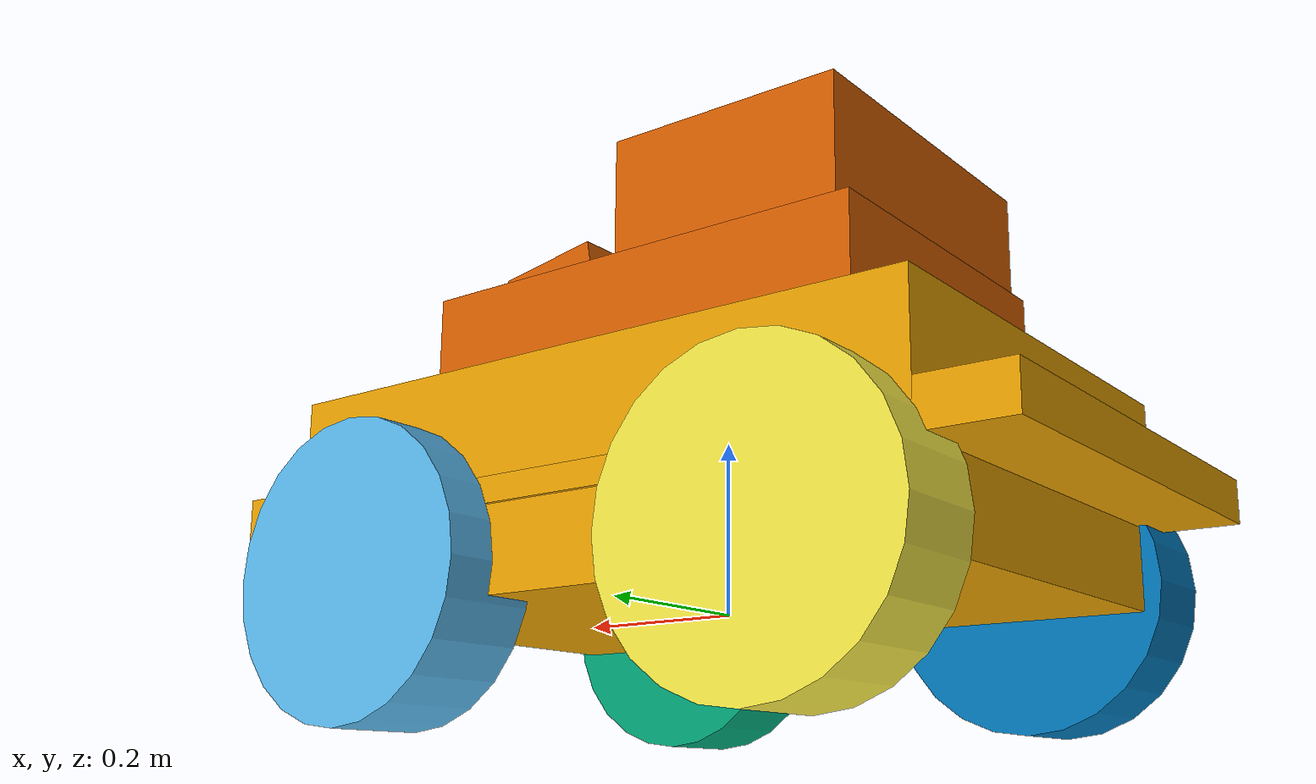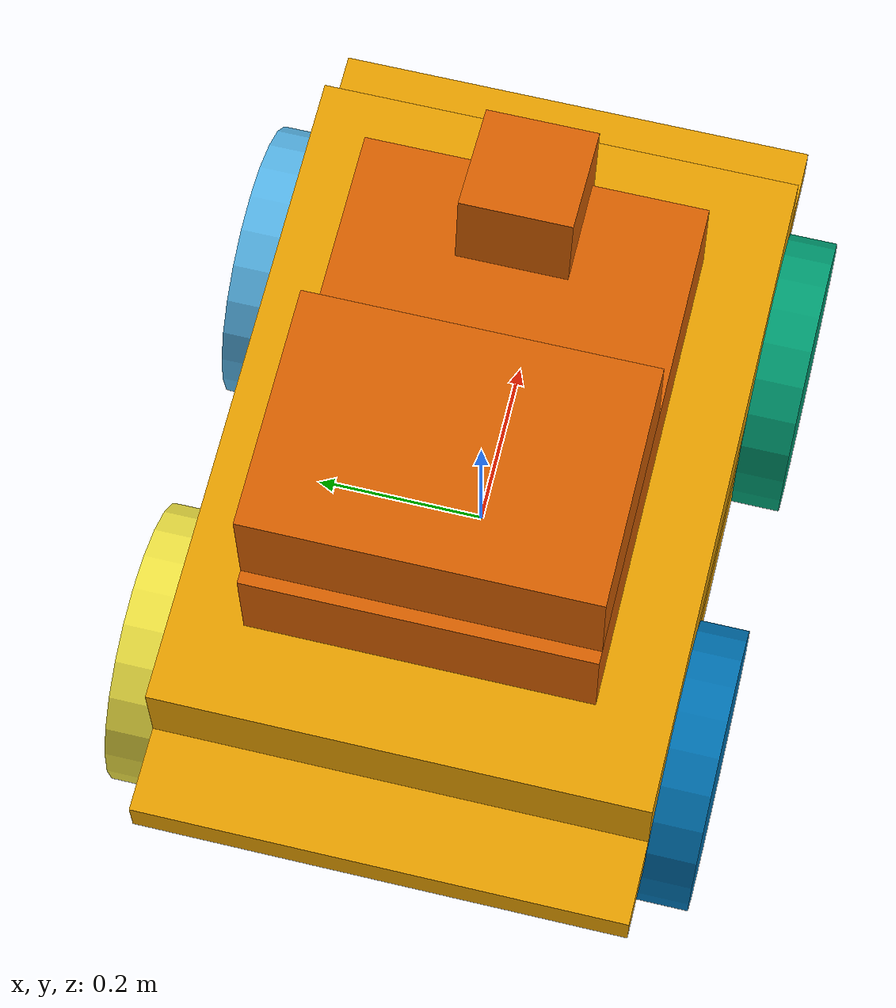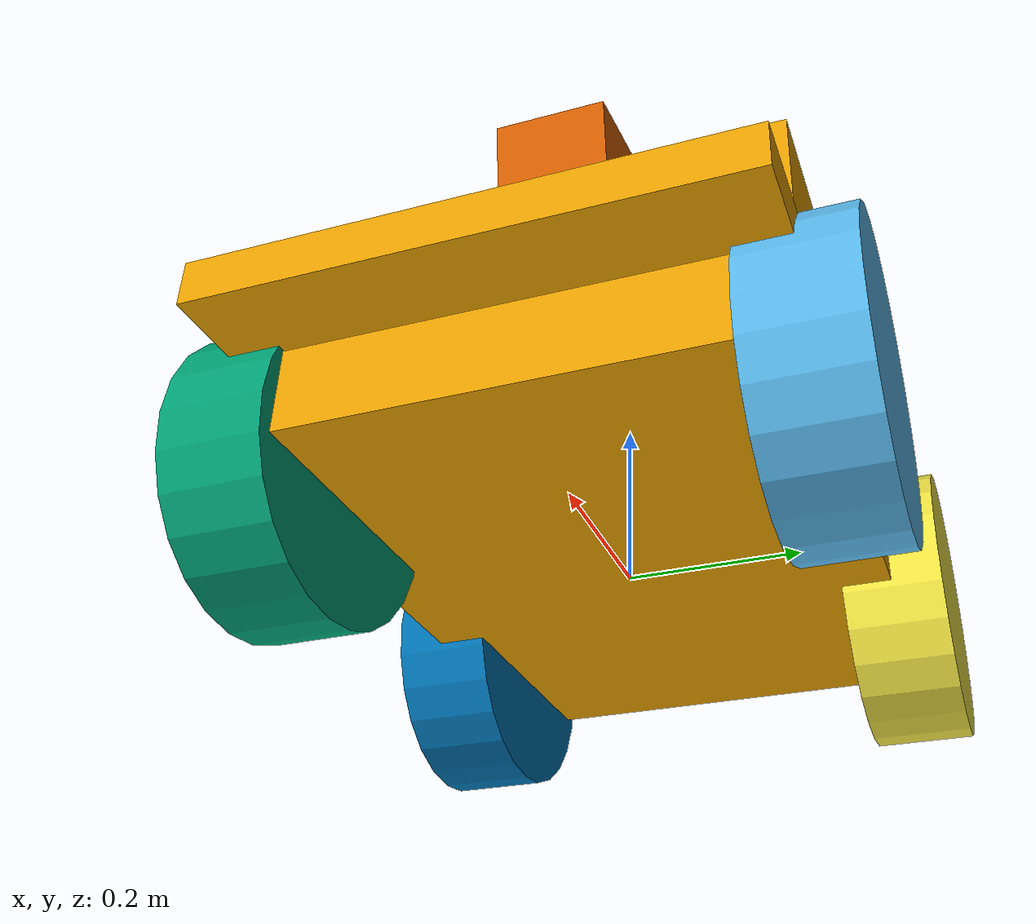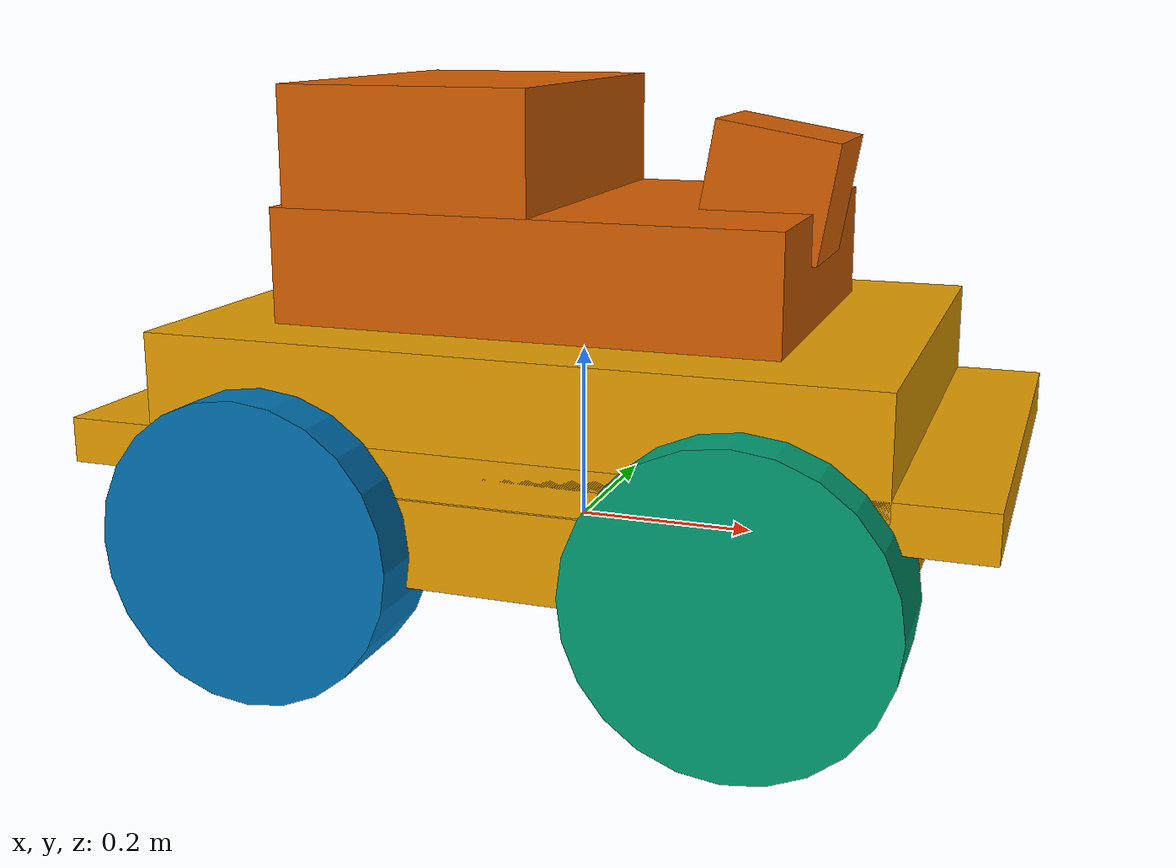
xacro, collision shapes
<?xml version='1.0' encoding='utf-8'?>
<robot name='ctu_cras_norlab_husky_sensor_config_1' xmlns:xacro='http://ros.org/wiki/xacro'>
  <xacro:arg name="name" default="ctu_cras_norlab_husky_sensor_config_1"/>
  <xacro:property name="robot_namespace" value="$(arg name)"/>
  <link name='${robot_namespace}/base_link'>
    <collision name='base_link_collision'>
      <origin xyz='0 0 0.12' rpy='0 -0 0'/>
      <geometry>
        <box size='0.9874 0.5709 0.05'/>
      </geometry>
    </collision>
    <collision name='base_link_collision_bottom'>
      <origin xyz='0 0 0.046' rpy='0 -0 0'/>
      <geometry>
        <box size='0.8 0.5709 0.095'/>
      </geometry>
    </collision>
    <collision name='base_link_collision_1'>
      <origin xyz='0 0 0.185625' rpy='0 -0 0'/>
      <geometry>
        <box size='0.78992 0.5709 0.12375'/>
      </geometry>
    </collision>
    <visual name='base_link_visual'>
      <origin xyz='0 0 0' rpy='0 -0 0'/>
      <geometry>
        <mesh filename='package://ctu_cras_norlab_husky_sensor_config_1/meshes/base_link.dae' scale='1 1 1'/>
      </geometry>
    </visual>
    <visual name='base_link_fixed_joint_lump__front_bumper_link_visual_3'>
      <origin xyz='0.48 0 0.091' rpy='0 -0 0'/>
      <geometry>
        <mesh filename='package://ctu_cras_norlab_husky_sensor_config_1/meshes/bumper.dae' scale='1 1 1'/>
      </geometry>
    </visual>
    <visual name='base_link_fixed_joint_lump__rear_bumper_link_visual_4'>
      <origin xyz='-0.48 0 0.091' rpy='0 -0 3.14159'/>
      <geometry>
        <mesh filename='package://ctu_cras_norlab_husky_sensor_config_1/meshes/bumper.dae' scale='1 1 1'/>
      </geometry>
    </visual>
    <visual name='base_link_fixed_joint_lump__top_chassis_link_visual_5'>
      <origin xyz='0 0 0' rpy='0 -0 0'/>
      <geometry>
        <mesh filename='package://ctu_cras_norlab_husky_sensor_config_1/meshes/top_chassis.dae' scale='1 1 1'/>
      </geometry>
    </visual>
  </link>
  <link name='${robot_namespace}/front_left_wheel_link'>
    <collision name='front_left_wheel_link_collision'>
      <origin xyz='0 0 0' rpy='1.5708 -0 0'/>
      <geometry>
        <cylinder radius='0.1651' length='0.1143'/>
      </geometry>
    </collision>
    <visual name='front_left_wheel_link_visual'>
      <origin xyz='0 0 0' rpy='0 -0 0'/>
      <geometry>
        <mesh filename='package://ctu_cras_norlab_husky_sensor_config_1/meshes/wheel.dae' scale='1 1 1'/>
      </geometry>
    </visual>
  </link>
  <link name='${robot_namespace}/front_right_wheel_link'>
    <collision name='front_right_wheel_link_collision'>
      <origin xyz='0 0 0' rpy='1.5708 -0 0'/>
      <geometry>
        <cylinder radius='0.1651' length='0.1143'/>
      </geometry>
    </collision>
    <visual name='front_right_wheel_link_visual'>
      <origin xyz='0 0 0' rpy='0 -0 0'/>
      <geometry>
        <mesh filename='package://ctu_cras_norlab_husky_sensor_config_1/meshes/wheel.dae' scale='1 1 1'/>
      </geometry>
    </visual>
  </link>
  <link name='${robot_namespace}/rear_left_wheel_link'>
    <collision name='rear_left_wheel_link_collision'>
      <origin xyz='0 0 0' rpy='1.5708 -0 0'/>
      <geometry>
        <cylinder radius='0.1651' length='0.1143'/>
      </geometry>
    </collision>
    <visual name='rear_left_wheel_link_visual'>
      <origin xyz='0 0 0' rpy='0 -0 0'/>
      <geometry>
        <mesh filename='package://ctu_cras_norlab_husky_sensor_config_1/meshes/wheel.dae' scale='1 1 1'/>
      </geometry>
    </visual>
  </link>
  <link name='${robot_namespace}/rear_right_wheel_link'>
    <collision name='rear_right_wheel_link_collision'>
      <origin xyz='0 0 0' rpy='1.5708 -0 0'/>
      <geometry>
        <cylinder radius='0.1651' length='0.1143'/>
      </geometry>
    </collision>
    <visual name='rear_right_wheel_link_visual'>
      <origin xyz='0 0 0' rpy='0 -0 0'/>
      <geometry>
        <mesh filename='package://ctu_cras_norlab_husky_sensor_config_1/meshes/wheel.dae' scale='1 1 1'/>
      </geometry>
    </visual>
  </link>
  <joint name='front_left_wheel_joint' type='revolute'>
    <origin xyz='0.256 0.2854 0.03282' rpy='0 -0 0'/>
    <parent link='${robot_namespace}/base_link'/>
    <child link='${robot_namespace}/front_left_wheel_link'/>
    <dynamics damping='0' friction='0' />
    <axis xyz='0 1 0'/>
    <limit lower='-1e+16' upper='1e+16' effort='-1' velocity='-1'/>
  </joint>
  <joint name='front_right_wheel_joint' type='revolute'>
    <origin xyz='0.256 -0.2854 0.03282' rpy='0 -0 0'/>
    <parent link='${robot_namespace}/base_link'/>
    <child link='${robot_namespace}/front_right_wheel_link'/>
    <dynamics damping='0' friction='0' />
    <axis xyz='0 1 0'/>
    <limit lower='-1e+16' upper='1e+16' effort='-1' velocity='-1'/>
  </joint>
  <joint name='rear_left_wheel_joint' type='revolute'>
    <origin xyz='-0.256 0.2854 0.03282' rpy='0 -0 0'/>
    <parent link='${robot_namespace}/base_link'/>
    <child link='${robot_namespace}/rear_left_wheel_link'/>
    <dynamics damping='0' friction='0' />
    <axis xyz='0 1 0'/>
    <limit lower='-1e+16' upper='1e+16' effort='-1' velocity='-1'/>
  </joint>
  <joint name='rear_right_wheel_joint' type='revolute'>
    <origin xyz='-0.256 -0.2854 0.03282' rpy='0 -0 0'/>
    <parent link='${robot_namespace}/base_link'/>
    <child link='${robot_namespace}/rear_right_wheel_link'/>
    <dynamics damping='0' friction='0' />
    <axis xyz='0 1 0'/>
    <limit lower='-1e+16' upper='1e+16' effort='-1' velocity='-1'/>
  </joint>

  <link name='${robot_namespace}/sensor_rack'>
    <collision name='collision_base'>
      <origin xyz='0.275 0.2 0.075' rpy='0 0 0'/>
      <geometry>
        <box size='0.56 0.4 0.15'/>
      </geometry>
    </collision>
    <collision name='collision_top'>
      <origin xyz='0.15 0.2 0.215' rpy='0 0 0'/>
      <geometry>
        <box size='0.28 0.4 0.13'/>
      </geometry>
    </collision>
    <collision name='collision_laser'>
      <origin xyz='0.505 0.2 0.17' rpy='0 0.17 0'/>
      <geometry>
        <box size='0.135 0.13 0.13'/>
      </geometry>
    </collision>
    <visual name='sensor_rack_visual'>
      <origin xyz='0 0 0.0' rpy='0 0 0'/>
      <geometry>
        <mesh filename='package://ctu_cras_norlab_husky_sensor_config_1/meshes/sensor_rack_lowres_shallow_laser.dae' scale='1 1 1'/>
      </geometry>
    </visual>
  </link>

  <joint name='base_link_JOINT_0' type='fixed'>
    <origin xyz='-0.283 -0.198243 0.224' rpy='0 0 0'/>
    <parent link='${robot_namespace}/base_link'/>
    <child link='${robot_namespace}/sensor_rack'/>
  </joint>
</robot>
